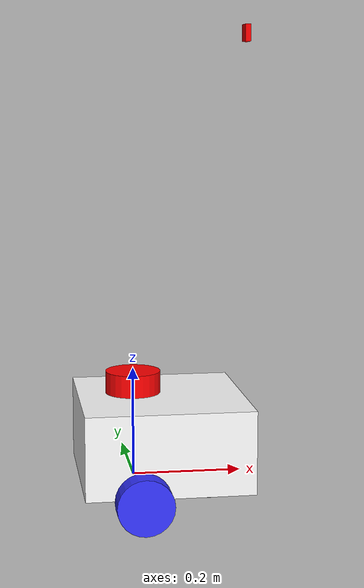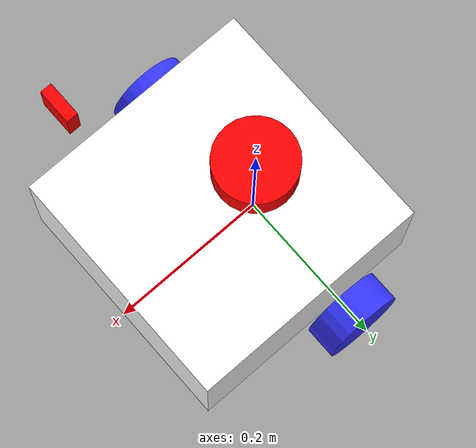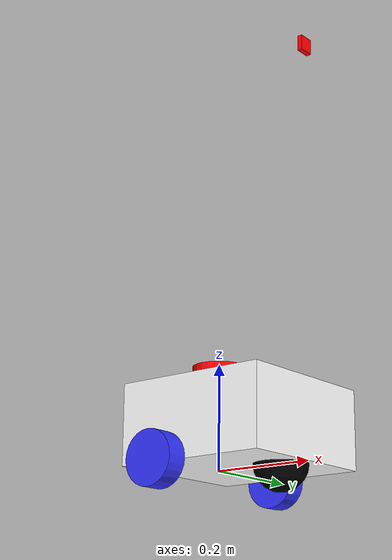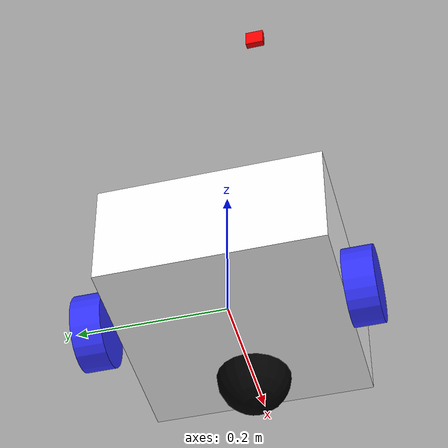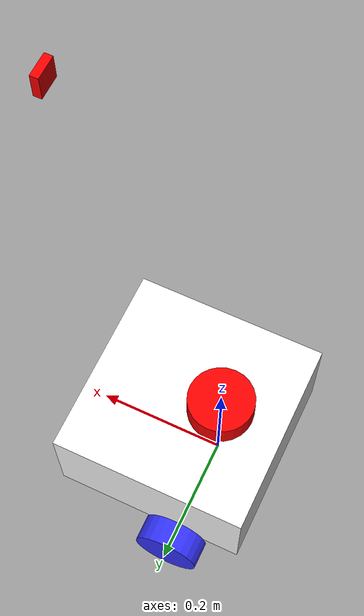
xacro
<?xml version="1.0"?>
<robot xmlns:xacro="http://www.ros.org/wiki/xacro"  name="robot">

    <xacro:include filename = "robot_core.xacro"/>

    <xacro:include filename = "ros2_control.xacro"/>

    <xacro:include filename = "lidar.xacro"/>

    <xacro:include filename = "camera.xacro"/>

</robot>

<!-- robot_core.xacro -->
<robot xmlns:xacro="http://www.ros.org/wiki/xacro" >

    <xacro:include filename="inertial_macros.xacro"/>

    <material name = "white">
        <color rgba="1 1 1 1"/>
    </material>

    <material name = "orange">
        <color rgba="1 0.3 0.1 1"/>
    </material>

    <material name = "blue">
        <color rgba="0.2 0.2 1 1"/>
    </material>

    <material name = "black">
        <color rgba="0 0 0 1"/>
    </material>

    <material name = "red">
        <color rgba="1 0 0 1"/>
    </material>

    <!-- BASE LINK -->

    <link name = "base_link">

    </link>

    <!-- BASE_FOOTPRINT LINK -->

    <joint name = "base_footprint_joint" type = "fixed">
        <parent link = "base_link"/>
        <child link = "base_footprint"/>
        <origin xyz = "0 0 0" rpy = "0 0 0"/>
    </joint>

    <link name = "base_footprint">
    </link>

    <!-- CHASSIS LINK -->

    <joint name ="chassis_join" type = "fixed">
        <parent link = "base_link"/>
        <child link = "chassis"/>
        <origin xyz = "-0.1 0 0"/>
    </joint>

    <link name = "chassis">
        <visual>
            <origin xyz = "0.15 0 0.075"/>
            <geometry>
                <box size = "0.3 0.3 0.15"/> <!-- The origin of the box will be the centered around the joint.  -->
            </geometry>
            <material name = "white"/>
        </visual>
        <collision>
            <origin xyz = "0.15 0 0.075"/>
            <geometry>
                <box size = "0.3 0.3 0.15"/> <!-- The origin of the box will be the centered around the joint.  -->
            </geometry>
        </collision>
        <xacro:inertial_box mass = "0.5" x = "0.3" y = "0.3" z = "0.15">
            <origin xyz = "0.15 0 0.075" rpy = "0 0 0"/>
        </xacro:inertial_box>
    </link>

    <gazebo reference = "chassis">
        <material>Gazebo/White</material>
    </gazebo>

    LEFT WHEEL LINK

    <joint name = "left_wheel_joint" type = "continuous">
        <parent link = "base_link"/>
        <child link = "left_wheel"/>
        <origin xyz = "0 0.175 0" rpy = "-${pi/2} 0 0"/>
        <axis xyz = "0 0 1"/>
    </joint>

    <link name = "left_wheel">
        <visual>
            <geometry>
                <cylinder radius = "0.05" length = "0.04"/>
            </geometry>
            <material name = "blue"/>
        </visual>
        <collision>
            <geometry>
                <cylinder radius = "0.05" length = "0.04"/>
            </geometry>
        </collision>
        <xacro:inertial_cylinder mass = "0.1" length = "0.04" radius = "0.05">
            <origin xyz = "0 0 0" rpy = "0 0 0"/>
        </xacro:inertial_cylinder>
    </link>

    <gazebo reference = "left_wheel">
        <material>Gazebo/Blue</material>
    </gazebo>

    <!-- RIGHT WHEEL LINK-->

    <joint name = "right_wheel_joint" type = "continuous">
        <parent link = "base_link"/>
        <child link = "right_wheel"/>
        <origin xyz = "0 -0.175 0" rpy = "${pi/2} 0 0"/> <!-- right hand rule rotation -->
        <axis xyz = "0 0 -1"/> <!-- set axis of rotation following the right-hand rule. if positive, we want a forward motion of the wheels. -->
    </joint>

    <link name = "right_wheel">
        <visual>
            <geometry>
                <cylinder radius = "0.05" length = "0.04"/>
            </geometry>
            <material name = "blue"/>
        </visual>
        <collision>
            <geometry>
                <cylinder radius = "0.05" length = "0.04"/>
            </geometry>
        </collision>
        <xacro:inertial_cylinder mass = "0.1" length = "0.04" radius = "0.05">
            <origin xyz = "0 0 0" rpy = "0 0 0"/>
        </xacro:inertial_cylinder>
    </link>

    <gazebo reference = "right_wheel">
        <material>Gazebo/Blue</material>
    </gazebo>

    <!-- CASTER WHEEL LINK -->
    <joint name = "caster_wheel_joint" type = "fixed">
        <parent link = "chassis"/>
        <child link = "caster_wheel"/>
        <origin xyz = "0.24 0 0"/>
    </joint>

    <link name = "caster_wheel">
        <visual>
            <geometry>
                <sphere radius = "0.05"/>
            </geometry>
            <material name = "black"/>
        </visual>
        <collision>
            <geometry>
                <sphere radius = "0.05"/>
            </geometry>
        </collision>
        <xacro:inertial_sphere mass = "0.1" radius = "0.05">
            <origin xyz = "0 0 0" rpy = "0 0 0"/>
        </xacro:inertial_sphere>
    </link>

    <gazebo reference = "caster_wheel">
        <material>Gazebo/Black</material>
        <mu1 value = "0.001"/>
        <mu2 value = "0.001"/>
    </gazebo>

</robot>

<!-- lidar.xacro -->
<robot xmlns:xacro="http://www.ros.org/wiki/xacro"  >

    <joint name = "laser_joint" type = "fixed">
        <parent link = "chassis"/>
        <child link = "laser_frame"/>
        <origin xyz = "0.1 0 0.175" rpy = "0 0 0"/>
    </joint>

    <link name = "laser_frame">
        <visual>
            <geometry>
                <cylinder radius = "0.05" length = "0.04"/>
            </geometry>
            <material name = "red"/>
        </visual>
        <collision>
            <geometry>
                <cylinder radius = "0.05" length = "0.04"/>
            </geometry>
        </collision>
        <xacro:inertial_cylinder mass = "0.1" length = "0.04" radius = "0.05">
            <origin xyz = "0 0 0" rpy = "0 0 0"/>
        </xacro:inertial_cylinder>
    </link>

    <gazebo reference="laser_frame">
        <material>Gazebo/Red</material>

        <sensor name="laser" type="ray">
            <pose> 0 0 0 0 0 0 </pose>
            <visualize>false</visualize>
            <update_rate>10</update_rate>
            <ray>
                <scan>
                    <horizontal>
                        <samples>360</samples>
                        <min_angle>-3.14</min_angle>
                        <max_angle>3.14</max_angle>
                    </horizontal>
                </scan>
                <range>
                    <min>0.3</min>
                    <max>12</max>
                </range>
            </ray>
            <plugin name="laser_controller" filename="libgazebo_ros_ray_sensor.so">
                <ros>
                    <argument>~/out:=scan</argument>
                </ros>
                <output_type>sensor_msgs/LaserScan</output_type>
                <frame_name>laser_frame</frame_name> <!-- scanned distance relative to laser_frame -->
            </plugin>
        </sensor>
    </gazebo>

</robot>

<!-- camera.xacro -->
<robot xmlns:xacro="http://www.ros.org/wiki/xacro"  >

    <joint name = "camera_joint" type = "fixed">
        <parent link = "chassis"/>
        <child link = "camera_link"/>
        <origin xyz = "0.305 0 0.80" rpy = "0 0 0"/>
    </joint>

    <link name = "camera_link">
        <visual>
            <geometry>
                <box size = "0.01 0.03 0.03"/>
            </geometry>
            <material name = "red"/>
        </visual>
    </link>

    <gazebo reference="laser_frame">
        <material>Gazebo/Red</material>

        <sensor name="laser" type="ray">
            <pose> 0 0 0 0 0 0 </pose>
            <visualize>true</visualize>
            <update_rate>10</update_rate>
            <ray>
                <scan>
                    <horizontal>
                        <samples>360</samples>
                        <min_angle>-3.14</min_angle>
                        <max_angle>3.14</max_angle>
                    </horizontal>
                </scan>
                <range>
                    <min>0.3</min>
                    <max>12</max>
                </range>
            </ray>
            <plugin name="laser_controller" filename="libgazebo_ros_ray_sensor.so">
                <ros>
                    <argument>~/out:=scan</argument>
                </ros>
                <output_type>sensor_msgs/LaserScan</output_type>
                <frame_name>laser_frame</frame_name>
            </plugin>
        </sensor>
    </gazebo>

</robot>
